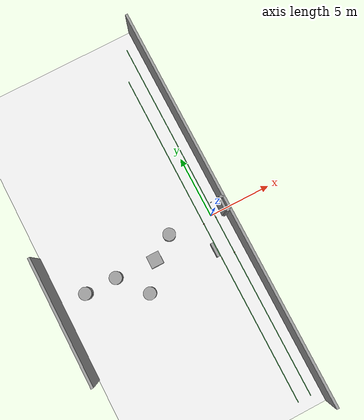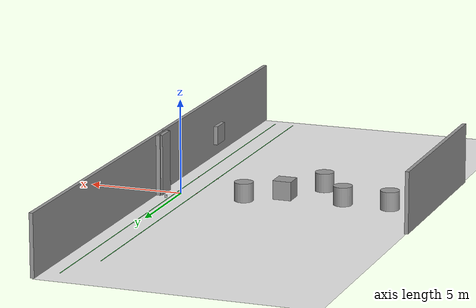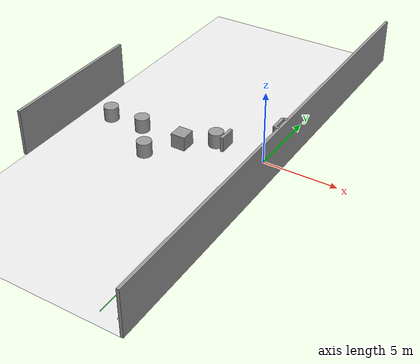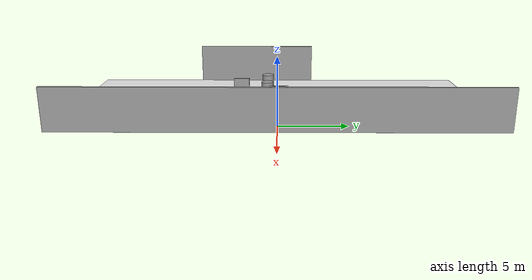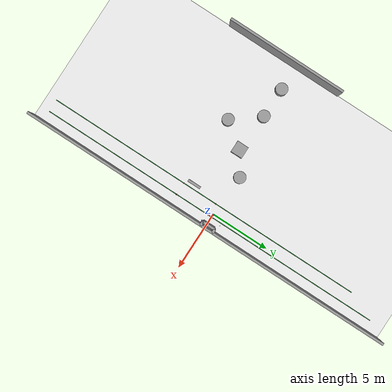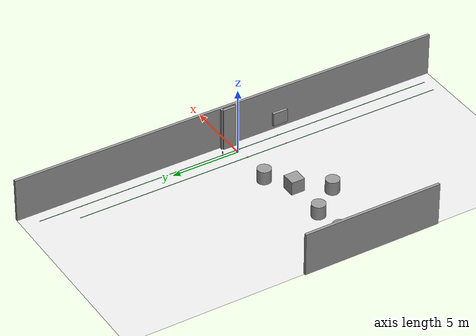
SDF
<sdf version="1.6">
 <world name="square_world">
  <model name="floor">
   <static>1</static>
   <pose>-5.99 0 0 0 -0 0</pose>
   <link name="link">
    <collision name="collision">
     <geometry><plane><normal>0 0 1</normal><size>14.34 32.2</size></plane></geometry>
     <surface><friction><ode><mu>100</mu><mu2>50</mu2></ode></friction></surface>
    </collision>
    <visual name="visual">
     <cast_shadows>0</cast_shadows>
     <geometry><plane><normal>0 0 1</normal><size>14.36 32.2</size></plane></geometry>
     <material><script><name>Gazebo/White</name><uri>__default__</uri></script></material>
    </visual>
    <velocity_decay><linear>0</linear><angular>0</angular></velocity_decay>
   </link>
  </model>
  <model name="wall1">
   <static>1</static>
   <pose>1.18 0 1.6 0 0 -1.5708</pose>
   <link name="wall_link">
    <inertial><mass>10000</mass></inertial>
    <collision name="wall_collision">
     <geometry><box><size>32.2 0.2 3.2</size></box></geometry>
     <surface><contact><collide_bitmask>2</collide_bitmask></contact></surface>
    </collision>
    <visual name="wall_visual">
     <geometry><box><size>32.2 0.2 3.2</size></box></geometry>
     <material><script><name>Gazebo/Grey</name><uri>__default__</uri></script></material>
    </visual>
   </link>
  </model>
  <model name="wall16">
   <static>1</static>
   <pose>1.0195 -0.42 1.6 0 -0 0</pose>
   <link name="wall_link">
    <inertial><mass>10000</mass></inertial>
    <collision name="wall_collision">
     <geometry><box><size>0.321 0.2 3.2</size></box></geometry>
     <surface><contact><collide_bitmask>2</collide_bitmask></contact></surface>
    </collision>
    <visual name="wall_visual">
     <geometry><box><size>0.321 0.2 3.2</size></box></geometry>
     <material><script><name>Gazebo/Grey</name><uri>__default__</uri></script></material>
    </visual>
   </link>
  </model>
  <model name="wall17">
   <static>1</static>
   <pose>1.0195 0.65 1.6 0 -0 0</pose>
   <link name="wall_link">
    <inertial><mass>10000</mass></inertial>
    <collision name="wall_collision">
     <geometry><box><size>0.321 0.2 3.2</size></box></geometry>
     <surface><contact><collide_bitmask>2</collide_bitmask></contact></surface>
    </collision>
    <visual name="wall_visual">
     <geometry><box><size>0.321 0.2 3.2</size></box></geometry>
     <material><script><name>Gazebo/Grey</name><uri>__default__</uri></script></material>
    </visual>
   </link>
  </model>
  <model name="wall18">
   <static>1</static>
   <pose>0.859 0.115 1.6 0 0 -1.5708</pose>
   <link name="wall_link">
    <inertial><mass>10000</mass></inertial>
    <collision name="wall_collision">
     <geometry><box><size>1.07 0.2 3.2</size></box></geometry>
     <surface><contact><collide_bitmask>2</collide_bitmask></contact></surface>
    </collision>
    <visual name="wall_visual">
     <geometry><box><size>1.07 0.2 3.2</size></box></geometry>
     <material><script><name>Gazebo/Grey</name><uri>__default__</uri></script></material>
    </visual>
   </link>
  </model>
  <model name="wall49">
   <static>1</static>
   <pose>-13.205 -1.97 1.6 0 0 -1.5708</pose>
   <link name="wall_link">
    <inertial><mass>10000</mass></inertial>
    <collision name="wall_collision">
     <geometry><box><size>10.18 0.2 3.2</size></box></geometry>
     <surface><contact><collide_bitmask>2</collide_bitmask></contact></surface>
    </collision>
    <visual name="wall_visual">
     <geometry><box><size>10.18 0.2 3.2</size></box></geometry>
     <material><script><name>Gazebo/Grey</name><uri>__default__</uri></script></material>
    </visual>
   </link>
  </model>
  <model name="wall488">
   <static>1</static>
   <pose>-1.18 -2.53064 2.71089 0 0 -1.5708</pose>
   <link name="wall_link">
    <inertial><mass>10000</mass></inertial>
    <collision name="wall_collision">
     <geometry><box><size>1.08146 0.2 0.977369</size></box></geometry>
     <surface><contact><collide_bitmask>2</collide_bitmask></contact></surface>
    </collision>
    <visual name="wall_visual">
     <geometry><box><size>1.08146 0.2 0.977369</size></box></geometry>
     <material><script><name>Gazebo/Grey</name><uri>__default__</uri></script></material>
    </visual>
   </link>
  </model>
  <model name="wall508">
   <static>1</static>
   <pose>-0.78 -1.41 0 0 0 -1.5708</pose>
   <link name="wall_link">
    <inertial><mass>10000</mass></inertial>
    <collision name="wall_collision">
     <geometry><box><size>27.78 0.05 0.001</size></box></geometry>
     <surface><contact><collide_bitmask>2</collide_bitmask></contact></surface>
    </collision>
    <visual name="wall_visual">
     <geometry><box><size>27.78 0.05 0.001</size></box></geometry>
     <material><script><name>Gazebo/Green</name><uri>__default__</uri></script></material>
    </visual>
   </link>
  </model>
  <model name="wall518">
   <static>1</static>
   <pose>0.275331 -0.195965 0 0 0 -1.5708</pose>
   <link name="wall_link">
    <inertial><mass>10000</mass></inertial>
    <collision name="wall_collision">
     <geometry><box><size>30.18 0.05 0.001</size></box></geometry>
     <surface><contact><collide_bitmask>2</collide_bitmask></contact></surface>
    </collision>
    <visual name="wall_visual">
     <geometry><box><size>30.18 0.05 0.001</size></box></geometry>
     <material><script><name>Gazebo/Green</name><uri>__default__</uri></script></material>
    </visual>
   </link>
  </model>
  <model name="wall1018">
   <static>1</static>
   <pose>0.28 -3.3 0 0 -0 0</pose>
   <link name="wall_link">
    <inertial><mass>10000</mass></inertial>
    <collision name="wall_collision">
     <geometry><cylinder><radius>0.05</radius><length>0.001</length></cylinder></geometry>
     <surface><contact><collide_bitmask>2</collide_bitmask></contact></surface>
    </collision>
    <visual name="wall_visual">
     <geometry><cylinder><radius>0.05</radius><length>0.001</length></cylinder></geometry>
     <material><script><name>Gazebo/Red</name><uri>__default__</uri></script></material>
    </visual>
   </link>
  </model>
  <model name="wall1028">
   <static>1</static>
   <pose>0.28 -0.3 0 0 -0 0</pose>
   <link name="wall_link">
    <inertial><mass>10000</mass></inertial>
    <collision name="wall_collision">
     <geometry><cylinder><radius>0.05</radius><length>0.001</length></cylinder></geometry>
     <surface><contact><collide_bitmask>2</collide_bitmask></contact></surface>
    </collision>
    <visual name="wall_visual">
     <geometry><cylinder><radius>0.05</radius><length>0.001</length></cylinder></geometry>
     <material><script><name>Gazebo/Red</name><uri>__default__</uri></script></material>
    </visual>
   </link>
  </model>
  <model name="wall1108">
   <static>1</static>
   <pose>-0.78 -3.3 0 0 -0 0</pose>
   <link name="wall_link">
    <inertial><mass>10000</mass></inertial>
    <collision name="wall_collision">
     <geometry><cylinder><radius>0.05</radius><length>0.001</length></cylinder></geometry>
     <surface><contact><collide_bitmask>2</collide_bitmask></contact></surface>
    </collision>
    <visual name="wall_visual">
     <geometry><cylinder><radius>0.05</radius><length>0.001</length></cylinder></geometry>
     <material><script><name>Gazebo/Red</name><uri>__default__</uri></script></material>
    </visual>
   </link>
  </model>
  <model name="wall1118">
   <static>1</static>
   <pose>-0.78 -0.3 0 0 -0 0</pose>
   <link name="wall_link">
    <inertial><mass>10000</mass></inertial>
    <collision name="wall_collision">
     <geometry><cylinder><radius>0.05</radius><length>0.001</length></cylinder></geometry>
     <surface><contact><collide_bitmask>2</collide_bitmask></contact></surface>
    </collision>
    <visual name="wall_visual">
     <geometry><cylinder><radius>0.05</radius><length>0.001</length></cylinder></geometry>
     <material><script><name>Gazebo/Red</name><uri>__default__</uri></script></material>
    </visual>
   </link>
  </model>
  <model name="traffic_parking">
   <static>1</static>
   <link name="box">
    <collision name="collision"><geometry><box><size>0.12 0.025 0.25</size></box></geometry></collision>
    <visual name="visual">
     <geometry><box><size>0.12 0.025 0.25</size></box></geometry>
     <material>
      <script>
       <uri>model://turtlebot3_autorace/traffic_parking/materials/scripts</uri>
       <uri>model://turtlebot3_autorace/traffic_parking/materials/textures</uri>
       <name>traffic_parking</name>
      </script>
     </material>
    </visual>
   </link>
   <pose>0.478595 0.920713 0 0 -0 0</pose>
  </model>
  <model name="unit_box">
   <pose>-5.35203 -1.05801 0.499995 -1e-05 -0 -0</pose>
   <link name="link">
    <inertial>
     <mass>1</mass>
     <inertia>
      <ixx>0.166667</ixx>
      <ixy>0</ixy>
      <ixz>0</ixz>
      <iyy>0.166667</iyy>
      <iyz>0</iyz>
      <izz>0.166667</izz>
     </inertia>
    </inertial>
    <collision name="collision"><geometry><box><size>1 1 1</size></box></geometry></collision>
    <visual name="visual">
     <geometry><box><size>1 1 1</size></box></geometry>
     <material>
      <script><name>Gazebo/Grey</name><uri>file://media/materials/scripts/gazebo.material</uri></script>
     </material>
    </visual>
   </link>
  </model>
  <model name="unit_cylinder">
   <pose>-3.53708 0.140741 0.499998 3e-06 -4e-06 0</pose>
   <link name="link">
    <inertial>
     <mass>1</mass>
     <inertia><ixx>0.145833</ixx><ixy>0</ixy><ixz>0</ixz><iyy>0.145833</iyy><iyz>0</iyz><izz>0.125</izz></inertia>
    </inertial>
    <collision name="collision">
     <geometry><cylinder><radius>0.5</radius><length>1</length></cylinder></geometry>
    </collision>
    <visual name="visual">
     <geometry><cylinder><radius>0.5</radius><length>1</length></cylinder></geometry>
     <material>
      <script><name>Gazebo/Grey</name><uri>file://media/materials/scripts/gazebo.material</uri></script>
     </material>
    </visual>
   </link>
  </model>
  <model name="unit_cylinder_0">
   <pose>-11.0976 -0.886815 0.499993 -3e-06 -3e-06 0</pose>
   <link name="link">
    <inertial>
     <mass>1</mass>
     <inertia><ixx>0.145833</ixx><ixy>0</ixy><ixz>0</ixz><iyy>0.145833</iyy><iyz>0</iyz><izz>0.125</izz></inertia>
    </inertial>
    <collision name="collision">
     <geometry><cylinder><radius>0.5</radius><length>1</length></cylinder></geometry>
    </collision>
    <visual name="visual">
     <geometry><cylinder><radius>0.5</radius><length>1</length></cylinder></geometry>
     <material>
      <script><name>Gazebo/Grey</name><uri>file://media/materials/scripts/gazebo.material</uri></script>
     </material>
    </visual>
   </link>
  </model>
  <model name="unit_cylinder_1">
   <pose>-8.56878 -0.891957 0.499997 3e-06 4e-06 -0</pose>
   <link name="link">
    <inertial>
     <mass>1</mass>
     <inertia><ixx>0.145833</ixx><ixy>0</ixy><ixz>0</ixz><iyy>0.145833</iyy><iyz>0</iyz><izz>0.125</izz></inertia>
    </inertial>
    <collision name="collision">
     <geometry><cylinder><radius>0.5</radius><length>1</length></cylinder></geometry>
    </collision>
    <visual name="visual">
     <geometry><cylinder><radius>0.5</radius><length>1</length></cylinder></geometry>
     <material>
      <script><name>Gazebo/Grey</name><uri>file://media/materials/scripts/gazebo.material</uri></script>
     </material>
    </visual>
   </link>
  </model>
  <model name="unit_cylinder_2">
   <pose>-6.82994 -3.09608 0.499997 3e-06 4e-06 -0</pose>
   <link name="link">
    <inertial>
     <mass>1</mass>
     <inertia><ixx>0.145833</ixx><ixy>0</ixy><ixz>0</ixz><iyy>0.145833</iyy><iyz>0</iyz><izz>0.125</izz></inertia>
    </inertial>
    <collision name="collision">
     <geometry><cylinder><radius>0.5</radius><length>1</length></cylinder></geometry>
    </collision>
    <visual name="visual">
     <geometry><cylinder><radius>0.5</radius><length>1</length></cylinder></geometry>
     <material>
      <script><name>Gazebo/Grey</name><uri>file://media/materials/scripts/gazebo.material</uri></script>
     </material>
    </visual>
   </link>
  </model>
 </world>
</sdf>
